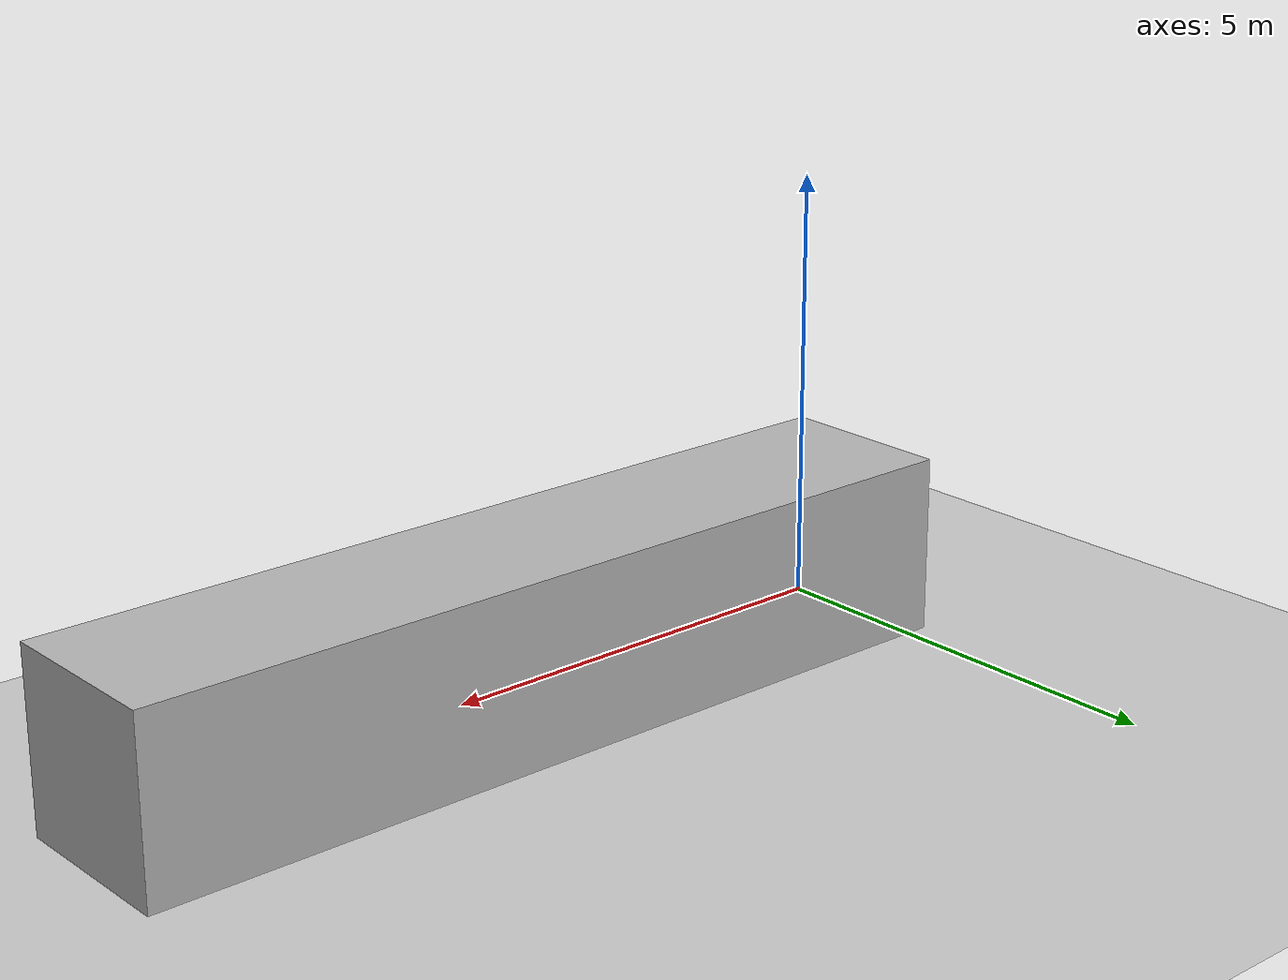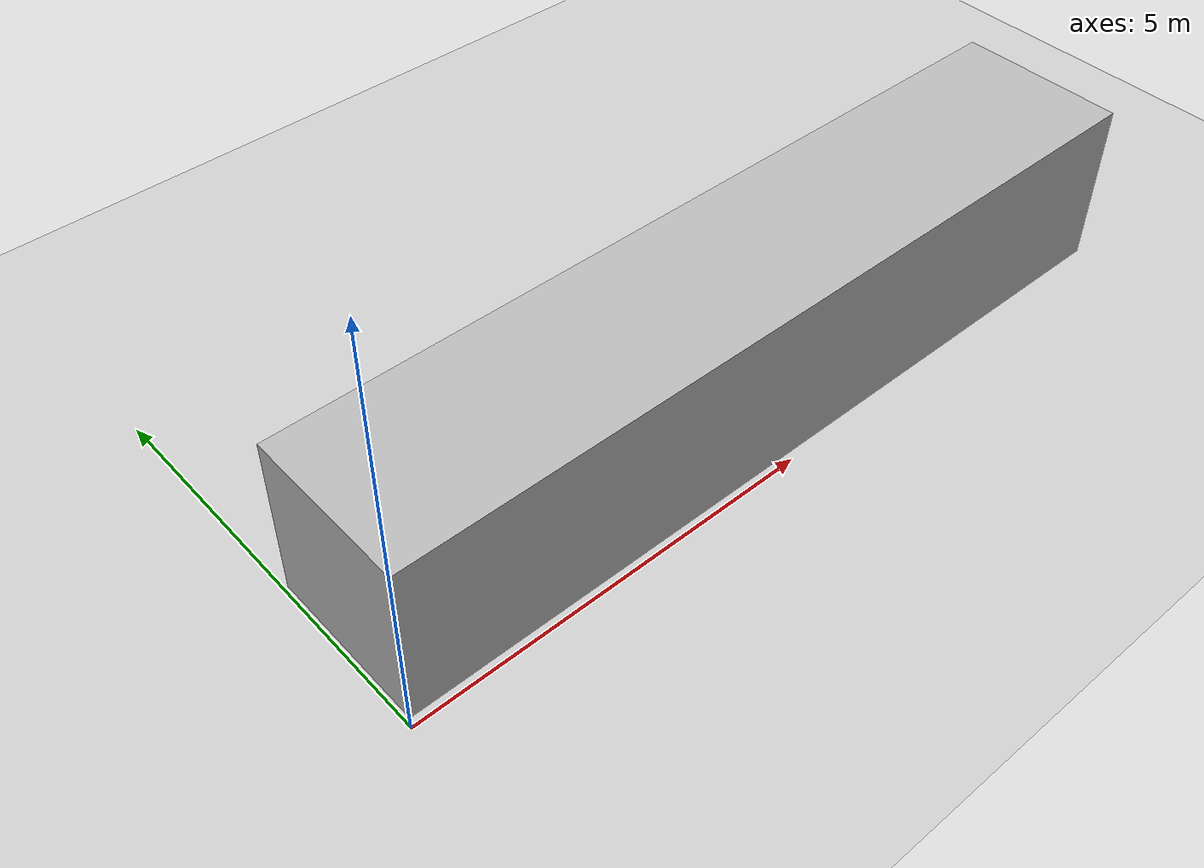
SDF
<?xml version="1.0" ?>
<sdf version="1.6">
  <world name="inspection_world">

    <!-- Sun -->
    <light name="sun" type="directional">
      <cast_shadows>1</cast_shadows>
      <pose>0 0 10 0 0 0</pose>
      <diffuse>0.8 0.8 0.8 1</diffuse>
      <specular>0.1 0.1 0.1 1</specular>
      <attenuation>
        <range>1000</range>
        <constant>0.9</constant>
        <linear>0.01</linear>
        <quadratic>0.001</quadratic>
      </attenuation>
      <direction>-0.5 0.5 -1</direction>
    </light>

    <!-- Ground plane -->
    <model name="ground_plane">
      <static>1</static>
      <link name="link">
        <collision name="collision">
          <geometry>
            <plane>
              <normal>0 0 1</normal>
              <size>100 100</size>
            </plane>
          </geometry>
          <surface>
            <friction>
              <ode><mu>100</mu><mu2>50</mu2></ode>
            </friction>
          </surface>
        </collision>
        <visual name="visual">
          <cast_shadows>0</cast_shadows>
          <geometry>
            <plane>
              <normal>0 0 1</normal>
              <size>100 100</size>
            </plane>
          </geometry>
          <material>
            <script>
              <uri>file://media/materials/scripts/gazebo.material</uri>
              <name>Gazebo/Grey</name>
            </script>
          </material>
        </visual>
      </link>
    </model>

    <include>
      <uri>model://room</uri>
    </include>

    <!-- ── Physics / Scene ──────────────────────────────────────────────── -->
    <gravity>0 0 -9.8</gravity>
    <magnetic_field>6e-06 2.3e-05 -4.2e-05</magnetic_field>
    <atmosphere type="adiabatic"/>
    <physics name="default_physics" default="0" type="ode">
      <max_step_size>0.001</max_step_size>
      <real_time_factor>1</real_time_factor>
      <real_time_update_rate>1000</real_time_update_rate>
    </physics>
    <scene>
      <ambient>0.6 0.6 0.6 1</ambient>
      <background>0.4 0.4 0.4 1</background>
      <shadows>0</shadows>
    </scene>

    <!-- Camera pulled back to see the full room -->
    <gui fullscreen="0">
      <camera name="user_camera">
        <pose>0 -6 5 0 0.7 1.57</pose>
        <view_controller>orbit</view_controller>
        <projection_type>perspective</projection_type>
      </camera>
    </gui>

  </world>
</sdf>

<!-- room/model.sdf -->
<sdf version="1.6">
  <model name="room">
    <static>1</static>
    <!-- Rotate +90deg around X to convert Scaniverse Y-up to Gazebo Z-up.
         Z offset 0.15 lifts mesh so floor sits on the Gazebo ground plane. -->
    <pose>0 0 0.15 1.5708 0 0</pose>
    <link name="link">
      <collision name="collision">
        <geometry>
          <mesh>
            <uri>model://room/meshes/room.obj</uri>
            <scale>1 1 1</scale>
          </mesh>
        </geometry>
      </collision>
      <visual name="visual">
        <geometry>
          <mesh>
            <uri>model://room/meshes/room.obj</uri>
            <scale>1 1 1</scale>
          </mesh>
        </geometry>
      </visual>
    </link>
  </model>
</sdf>
